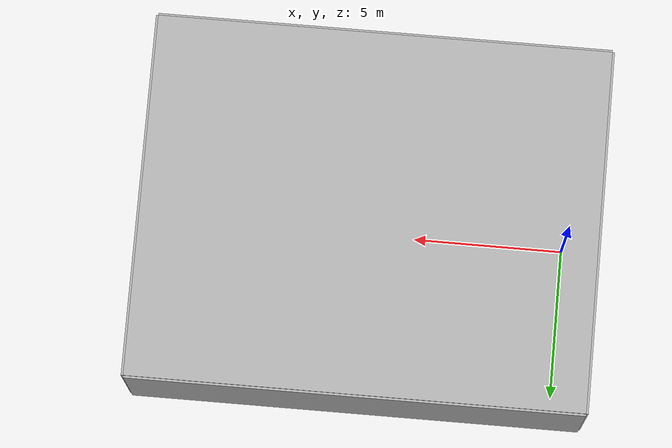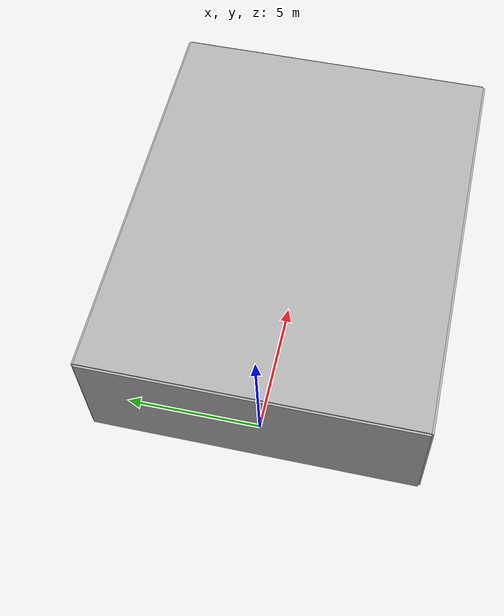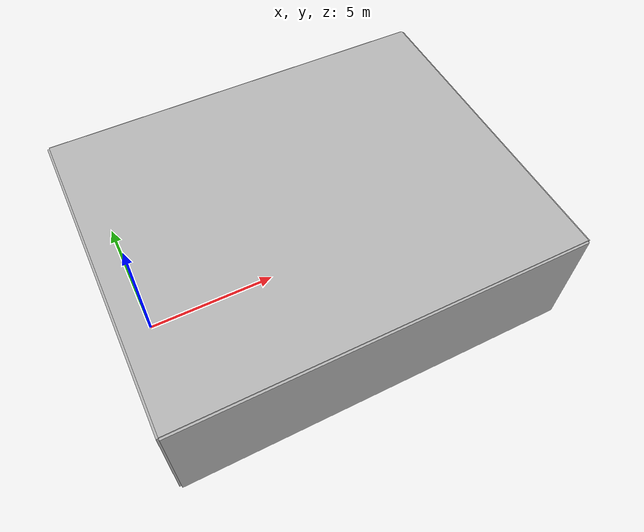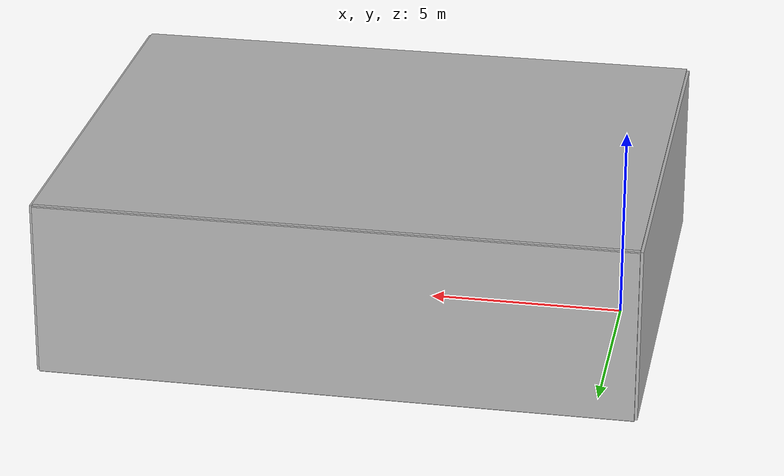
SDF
<?xml version="1.0"?>
<sdf version="1.6">
  <world name="default">
    <!--
      Comprehensive multibeam sonar validation world.
      Sensor is spawned by launch and should be placed at:
      x=0 y=0 z=2.0 roll=0 pitch=0 yaw=0
    -->

    <physics name="1ms" type="ignored">
      <max_step_size>0.001</max_step_size>
      <real_time_factor>1.0</real_time_factor>
    </physics>

    <plugin filename="gz-sim-physics-system" name="gz::sim::systems::Physics"/>
    <plugin filename="gz-sim-sensors-system" name="gz::sim::systems::Sensors">
      <render_engine>ogre2</render_engine>
    </plugin>
    <plugin filename="gz-sim-user-commands-system" name="gz::sim::systems::UserCommands"/>
    <plugin filename="gz-sim-scene-broadcaster-system" name="gz::sim::systems::SceneBroadcaster"/>
    <plugin filename="multibeam_sonar_system" name="custom::MultibeamSonarSystem"/>

    <light name="sun" type="directional">
      <cast_shadows>false</cast_shadows>
      <pose>0 0 20 0 0 0</pose>
      <diffuse>0.45 0.50 0.60 1</diffuse>
      <specular>0.10 0.10 0.10 1</specular>
      <direction>0.1 0.1 -1</direction>
    </light>

    <scene>
      <ambient>0.15 0.20 0.25 1</ambient>
      <background>0.05 0.08 0.12 1</background>
      <shadows>false</shadows>
    </scene>

    <gui fullscreen="0">
      <plugin filename="MinimalScene" name="3D View">
        <gz-gui>
          <title>3D View</title>
          <property type="bool" key="showTitleBar">false</property>
          <property type="string" key="state">docked</property>
        </gz-gui>
        <engine>ogre2</engine>
        <scene>scene</scene>
        <ambient_light>0.3 0.4 0.5</ambient_light>
        <background_color>0.05 0.08 0.12</background_color>
        <camera_pose>-5 0 4 0 0.45 0</camera_pose>
      </plugin>

      <plugin filename="WorldControl" name="World control">
        <gz-gui>
          <title>World control</title>
          <property type="bool" key="showTitleBar">false</property>
          <property type="bool" key="resizable">false</property>
          <property type="double" key="height">72</property>
          <property type="double" key="z">1</property>
          <property type="string" key="state">floating</property>
          <anchors target="3D View">
            <line own="left" target="left"/>
            <line own="bottom" target="bottom"/>
          </anchors>
        </gz-gui>
        <play_pause>true</play_pause>
        <step>true</step>
        <start_paused>true</start_paused>
        <use_event>true</use_event>
      </plugin>

      <plugin filename="WorldStats" name="World stats">
        <gz-gui>
          <title>World stats</title>
          <property type="bool" key="showTitleBar">false</property>
          <property type="bool" key="resizable">false</property>
          <property type="double" key="height">110</property>
          <property type="double" key="width">290</property>
          <property type="double" key="z">1</property>
          <property type="string" key="state">floating</property>
          <anchors target="3D View">
            <line own="right" target="right"/>
            <line own="bottom" target="bottom"/>
          </anchors>
        </gz-gui>
        <sim_time>true</sim_time>
        <real_time>true</real_time>
        <real_time_factor>true</real_time_factor>
        <iterations>true</iterations>
      </plugin>

      <plugin filename="ComponentInspector" name="Component inspector">
        <gz-gui>
          <property type="string" key="state">docked</property>
        </gz-gui>
      </plugin>

      <plugin filename="EntityTree" name="Entity tree">
        <gz-gui>
          <property type="string" key="state">docked</property>
        </gz-gui>
      </plugin>
    </gui>

    <!-- Tank boundaries (15m x 12m x 4.5m) -->
    <model name="tank_floor">
      <static>true</static>
      <pose>6.5 0 0 0 0 0</pose>
      <link name="link">
        <collision name="col"><geometry><box><size>15 12 0.1</size></box></geometry></collision>
        <visual name="vis"><geometry><box><size>15 12 0.1</size></box></geometry></visual>
      </link>
    </model>

    <model name="tank_ceiling">
      <static>true</static>
      <pose>6.5 0 4.5 0 0 0</pose>
      <link name="link">
        <collision name="col"><geometry><box><size>15 12 0.1</size></box></geometry></collision>
        <visual name="vis"><geometry><box><size>15 12 0.1</size></box></geometry></visual>
      </link>
    </model>

    <model name="tank_wall_back">
      <static>true</static>
      <pose>-1 0 2.25 0 0 0</pose>
      <link name="link">
        <collision name="col"><geometry><box><size>0.15 12 4.5</size></box></geometry></collision>
        <visual name="vis"><geometry><box><size>0.15 12 4.5</size></box></geometry></visual>
      </link>
    </model>

    <model name="tank_wall_far">
      <static>true</static>
      <pose>14 0 2.25 0 0 0</pose>
      <link name="link">
        <collision name="col"><geometry><box><size>0.15 12 4.5</size></box></geometry></collision>
        <visual name="vis"><geometry><box><size>0.15 12 4.5</size></box></geometry></visual>
      </link>
    </model>

    <model name="tank_wall_left">
      <static>true</static>
      <pose>6.5 6 2.25 0 0 0</pose>
      <link name="link">
        <collision name="col"><geometry><box><size>15 0.15 4.5</size></box></geometry></collision>
        <visual name="vis"><geometry><box><size>15 0.15 4.5</size></box></geometry></visual>
      </link>
    </model>

    <model name="tank_wall_right">
      <static>true</static>
      <pose>6.5 -6 2.25 0 0 0</pose>
      <link name="link">
        <collision name="col"><geometry><box><size>15 0.15 4.5</size></box></geometry></collision>
        <visual name="vis"><geometry><box><size>15 0.15 4.5</size></box></geometry></visual>
      </link>
    </model>

    <!-- Near field -->
    <model name="near_cyl_center">
      <static>true</static>
      <pose>1.8 0.0 2.0 0 0 0</pose>
      <link name="link">
        <collision name="col"><geometry><cylinder><radius>0.16</radius><length>1.2</length></cylinder></geometry></collision>
        <visual name="vis"><geometry><cylinder><radius>0.16</radius><length>1.2</length></cylinder></geometry></visual>
      </link>
    </model>

    <model name="near_sphere_left">
      <static>true</static>
      <pose>2.3 1.2 2.0 0 0 0</pose>
      <link name="link">
        <collision name="col"><geometry><sphere><radius>0.22</radius></sphere></geometry></collision>
        <visual name="vis"><geometry><sphere><radius>0.22</radius></sphere></geometry></visual>
      </link>
    </model>

    <model name="near_sphere_right">
      <static>true</static>
      <pose>2.3 -1.2 2.0 0 0 0</pose>
      <link name="link">
        <collision name="col"><geometry><sphere><radius>0.22</radius></sphere></geometry></collision>
        <visual name="vis"><geometry><sphere><radius>0.22</radius></sphere></geometry></visual>
      </link>
    </model>

    <model name="near_plate">
      <static>true</static>
      <pose>3.2 0.0 2.0 0 0 0</pose>
      <link name="link">
        <collision name="col"><geometry><box><size>0.1 2.8 1.3</size></box></geometry></collision>
        <visual name="vis"><geometry><box><size>0.1 2.8 1.3</size></box></geometry></visual>
      </link>
    </model>

    <!-- Mid field -->
    <model name="mid_pair_left">
      <static>true</static>
      <pose>5.0 0.25 2.0 0 0 0</pose>
      <link name="link">
        <collision name="col"><geometry><cylinder><radius>0.12</radius><length>1.2</length></cylinder></geometry></collision>
        <visual name="vis"><geometry><cylinder><radius>0.12</radius><length>1.2</length></cylinder></geometry></visual>
      </link>
    </model>

    <model name="mid_pair_right">
      <static>true</static>
      <pose>5.0 -0.25 2.0 0 0 0</pose>
      <link name="link">
        <collision name="col"><geometry><cylinder><radius>0.12</radius><length>1.2</length></cylinder></geometry></collision>
        <visual name="vis"><geometry><cylinder><radius>0.12</radius><length>1.2</length></cylinder></geometry></visual>
      </link>
    </model>

    <model name="mid_tall_cyl">
      <static>true</static>
      <pose>4.8 0.0 2.0 0 0 0</pose>
      <link name="link">
        <collision name="col"><geometry><cylinder><radius>0.20</radius><length>2.2</length></cylinder></geometry></collision>
        <visual name="vis"><geometry><cylinder><radius>0.20</radius><length>2.2</length></cylinder></geometry></visual>
      </link>
    </model>

    <model name="mid_angled_wall">
      <static>true</static>
      <pose>5.8 -2.4 2.0 0 0 0.60</pose>
      <link name="link">
        <collision name="col"><geometry><box><size>0.1 2.6 1.2</size></box></geometry></collision>
        <visual name="vis"><geometry><box><size>0.1 2.6 1.2</size></box></geometry></visual>
      </link>
    </model>

    <model name="mid_sphere_left">
      <static>true</static>
      <pose>6.5 2.5 2.0 0 0 0</pose>
      <link name="link">
        <collision name="col"><geometry><sphere><radius>0.35</radius></sphere></geometry></collision>
        <visual name="vis"><geometry><sphere><radius>0.35</radius></sphere></geometry></visual>
      </link>
    </model>

    <model name="mid_box_right">
      <static>true</static>
      <pose>6.8 -3.2 2.0 0 0 -0.40</pose>
      <link name="link">
        <collision name="col"><geometry><box><size>0.6 0.6 1.3</size></box></geometry></collision>
        <visual name="vis"><geometry><box><size>0.6 0.6 1.3</size></box></geometry></visual>
      </link>
    </model>

    <!-- Far field -->
    <model name="far_cyl_center">
      <static>true</static>
      <pose>9.5 0.0 2.0 0 0 0</pose>
      <link name="link">
        <collision name="col"><geometry><cylinder><radius>0.30</radius><length>1.4</length></cylinder></geometry></collision>
        <visual name="vis"><geometry><cylinder><radius>0.30</radius><length>1.4</length></cylinder></geometry></visual>
      </link>
    </model>

    <model name="far_sphere_left">
      <static>true</static>
      <pose>10.0 4.0 2.0 0 0 0</pose>
      <link name="link">
        <collision name="col"><geometry><sphere><radius>0.50</radius></sphere></geometry></collision>
        <visual name="vis"><geometry><sphere><radius>0.50</radius></sphere></geometry></visual>
      </link>
    </model>

    <model name="far_plate_right">
      <static>true</static>
      <pose>11.0 -3.0 2.0 0 0 0.35</pose>
      <link name="link">
        <collision name="col"><geometry><box><size>0.1 3.2 1.3</size></box></geometry></collision>
        <visual name="vis"><geometry><box><size>0.1 3.2 1.3</size></box></geometry></visual>
      </link>
    </model>

    <!-- Extreme off-axis -->
    <model name="edge_cyl_left">
      <static>true</static>
      <pose>3.0 3.8 2.0 0 0 0</pose>
      <link name="link">
        <collision name="col"><geometry><cylinder><radius>0.20</radius><length>1.2</length></cylinder></geometry></collision>
        <visual name="vis"><geometry><cylinder><radius>0.20</radius><length>1.2</length></cylinder></geometry></visual>
      </link>
    </model>

    <model name="edge_cyl_right">
      <static>true</static>
      <pose>3.0 -3.8 2.0 0 0 0</pose>
      <link name="link">
        <collision name="col"><geometry><cylinder><radius>0.20</radius><length>1.2</length></cylinder></geometry></collision>
        <visual name="vis"><geometry><cylinder><radius>0.20</radius><length>1.2</length></cylinder></geometry></visual>
      </link>
    </model>

    <!-- Vertical slice tests -->
    <model name="vertical_above_slice">
      <static>true</static>
      <pose>5.0 1.5 3.5 0 0 0</pose>
      <link name="link">
        <collision name="col"><geometry><sphere><radius>0.25</radius></sphere></geometry></collision>
        <visual name="vis"><geometry><sphere><radius>0.25</radius></sphere></geometry></visual>
      </link>
    </model>

    <model name="vertical_edge_slice">
      <static>true</static>
      <pose>5.0 -1.5 2.4 0 0 0</pose>
      <link name="link">
        <collision name="col"><geometry><sphere><radius>0.20</radius></sphere></geometry></collision>
        <visual name="vis"><geometry><sphere><radius>0.20</radius></sphere></geometry></visual>
      </link>
    </model>

    <!-- Same bearing, two ranges -->
    <model name="range_pair_near">
      <static>true</static>
      <pose>3.8 -0.8 2.0 0 0 0</pose>
      <link name="link">
        <collision name="col"><geometry><cylinder><radius>0.12</radius><length>1.2</length></cylinder></geometry></collision>
        <visual name="vis"><geometry><cylinder><radius>0.12</radius><length>1.2</length></cylinder></geometry></visual>
      </link>
    </model>

    <model name="range_pair_far">
      <static>true</static>
      <pose>6.0 -0.8 2.0 0 0 0</pose>
      <link name="link">
        <collision name="col"><geometry><cylinder><radius>0.12</radius><length>1.2</length></cylinder></geometry></collision>
        <visual name="vis"><geometry><cylinder><radius>0.12</radius><length>1.2</length></cylinder></geometry></visual>
      </link>
    </model>

    <!-- Reflectivity contrast proxies (same geometry) -->
    <model name="reflectivity_high_proxy">
      <static>true</static>
      <pose>8.0 2.2 2.0 0 0 0.20</pose>
      <link name="link">
        <collision name="col"><geometry><box><size>0.45 0.45 1.2</size></box></geometry></collision>
        <visual name="vis">
          <geometry><box><size>0.45 0.45 1.2</size></box></geometry>
          <material>
            <ambient>0.95 0.95 0.95 1</ambient>
            <diffuse>0.95 0.95 0.95 1</diffuse>
          </material>
        </visual>
      </link>
    </model>

    <model name="reflectivity_low_proxy">
      <static>true</static>
      <pose>8.0 -2.2 2.0 0 0 -0.20</pose>
      <link name="link">
        <collision name="col"><geometry><box><size>0.45 0.45 1.2</size></box></geometry></collision>
        <visual name="vis">
          <geometry><box><size>0.45 0.45 1.2</size></box></geometry>
          <material>
            <ambient>0.08 0.08 0.10 1</ambient>
            <diffuse>0.08 0.08 0.10 1</diffuse>
          </material>
        </visual>
      </link>
    </model>
  </world>
</sdf>
